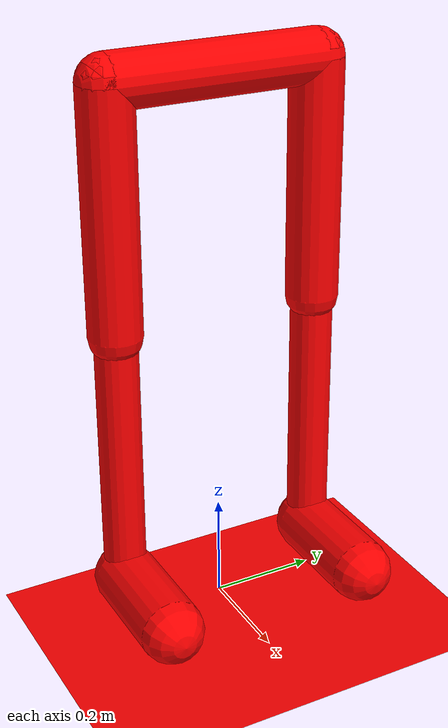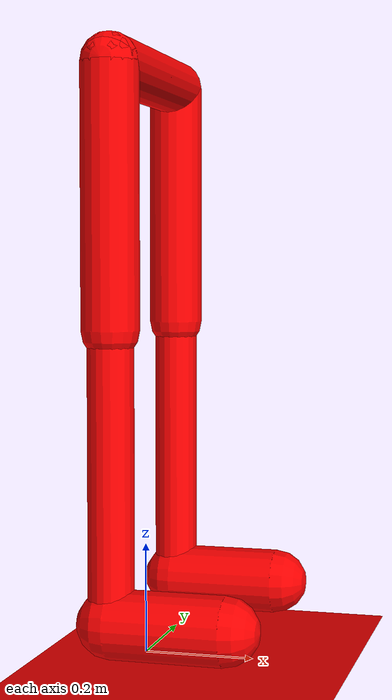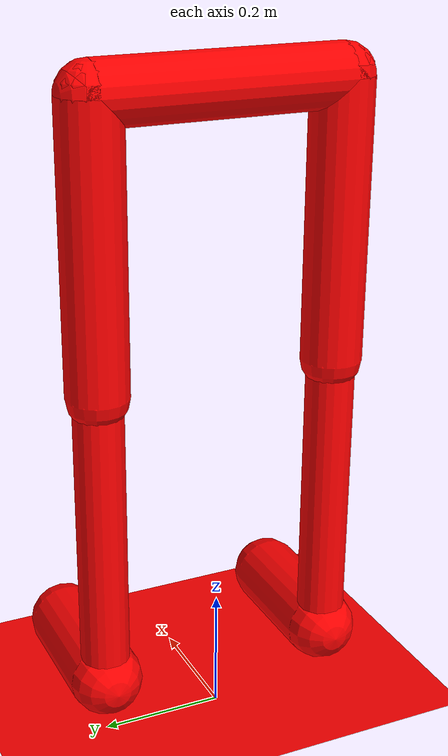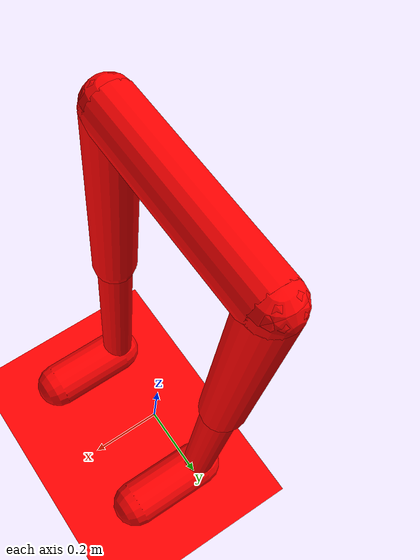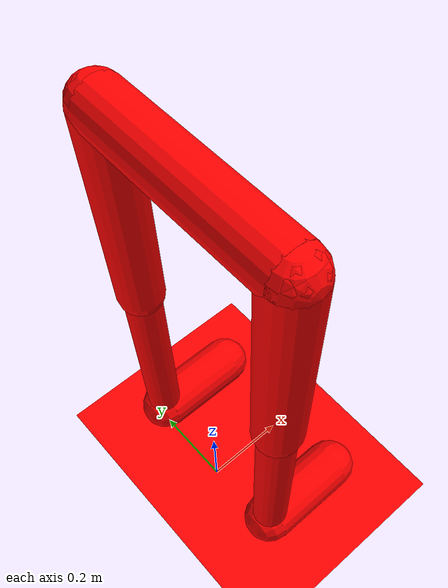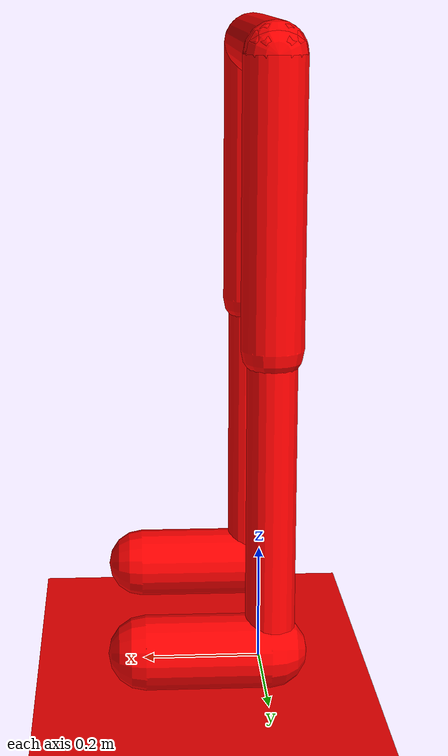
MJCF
<mujoco model="walker3d">
  <compiler angle="degree" coordinate="local" inertiafromgeom="true"/>
  <size njmax="3000" nconmax="1000"/>
  <default>
    <joint armature="1" damping="10" limited="true"/>
    <geom condim="6" density="500" friction=".7 .1 .1" rgba="1 0 0  1"/>
    <site size="0.05" type="sphere" rgba="0 0 1 1"/>
  </default>
  <option timestep="0.002"/>
  <worldbody>
    <geom name="floor" size="5 5 0.1" type="plane" condim="6"/>
    <body name="robot" pos="0 0 1.05">
      <site name="robot" rgba="1 0 0 .1"/>
      <camera name="vision" pos=".125 0 .2" xyaxes="0 -1 0 .4 0 1" fovy="100"/>
      <joint armature="0" axis="1 0 0" damping="0" limited="false" name="rootx" pos="0 0 0" stiffness="0" type="slide"/>
      <joint armature="0" axis="0 0 1" damping="0" limited="false" name="rootz" pos="0 0 0" stiffness="10" type="hinge"/>
      <joint armature="0" axis="0 1 0" damping="0" limited="false" name="rooty" pos="0 0 0" stiffness="0" type="slide"/>

      <geom friction="0.9" fromto="0 0.2 0 0 -0.2 0" name="robot_geom" size="0.05" type="capsule"/>
      <body name="thigh" pos="0 0.2 0">
        <joint axis="0 -1 0" name="thigh_joint" pos="0 0 0" range="-150 0" type="hinge"/>
        <geom friction="0.9" fromto="0 0 0 0 0 -0.45" name="thigh_geom" size="0.05" type="capsule"/>
        <body name="leg" pos="0 0 -0.7">
          <joint axis="0 -1 0" name="leg_joint" pos="0 0 0.25" range="-150 0" type="hinge"/>
          <geom friction="0.9" fromto="0 0 0.25 0 0 -0.25" name="leg_geom" size="0.04" type="capsule"/>
          <body name="foot" pos="0.2 0 -0.35">
            <joint axis="0 -1 0" name="foot_joint" pos="-0.2 0 0.1" range="-45 45" type="hinge"/>
            <geom friction="0.9" fromto="-0.2 0 0.1 0.0 0 0.1" name="foot_geom" size="0.06" type="capsule"/>
            <site name="foot" pos="0.0 0 0.1"/>
          </body>
        </body>
      </body>
      <!-- copied and then replace thigh->thigh_left, leg->leg_left, foot->foot_right -->
      <body name="thigh_left" pos="0 -0.2 0">
        <joint axis="0 -1 0" name="thigh_left_joint" pos="0 0 0" range="-150 0" type="hinge"/>
        <geom friction="0.9" fromto="0 0 0 0 0 -0.45" name="thigh_left_geom" size="0.05" type="capsule"/>
        <body name="leg_left" pos="0 0 -0.7">
          <joint axis="0 -1 0" name="leg_left_joint" pos="0 0 0.25" range="-150 0" type="hinge"/>
          <geom friction="0.9" fromto="0 0 0.25 0 0 -0.25" name="leg_left_geom" size="0.04" type="capsule"/>
          <body name="foot_left" pos="0.2 0 -0.35">
            <joint axis="0 -1 0" name="foot_left_joint" pos="-0.2 0 0.1" range="-45 45" type="hinge"/>
            <geom friction="1.9" fromto="-0.2 0 0.1 0.0 0 0.1" name="foot_left_geom" size="0.06" type="capsule"/>
            <site name="foot_left" pos="0.0 0 0.1"/>
          </body>
        </body>
      </body>
    </body>
  </worldbody>
  <sensor>
    <touch site="foot" name="touch_foot"/>
    <touch site="foot_left" name="touch_foot_left"/>

    <jointpos joint="thigh_joint" name="jointpos_thigh_joint"/>
    <jointpos joint="leg_joint" name="jointpos_leg_joint"/>
    <jointpos joint="foot_joint" name="jointpos_foot_joint"/>
    <jointpos joint="thigh_left_joint" name="jointpos_thigh_left_joint"/>
    <jointpos joint="leg_left_joint" name="jointpos_leg_left_joint"/>
    <jointpos joint="foot_left_joint" name="jointpos_foot_left_joint"/>

    <jointvel joint="thigh_joint" name="jointvel_thigh_joint"/>
    <jointvel joint="leg_joint" name="jointvel_leg_joint"/>
    <jointvel joint="foot_joint" name="jointvel_foot_joint"/>
    <jointvel joint="thigh_left_joint" name="jointvel_thigh_left_joint"/>
    <jointvel joint="leg_left_joint" name="jointvel_leg_left_joint"/>
    <jointvel joint="foot_left_joint" name="jointvel_foot_left_joint"/>

        <!-- Used for observation -->
        <accelerometer site="robot" name="accelerometer"/>
        <velocimeter site="robot" name="velocimeter"/>
        <gyro site="robot" name="gyro"/>
        <magnetometer site="robot" name="magnetometer"/>

        <!-- Used for intrinsic constraints -->
        <subtreecom body="robot" name="subtreecom"/>
        <subtreelinvel body="robot" name="subtreelinvel"/>
        <subtreeangmom body="robot" name="subtreeangmom"/>
  </sensor>
  <actuator>
    <motor ctrllimited="true" ctrlrange="-1.0 1.0" gear="30" joint="thigh_joint"/>
    <motor ctrllimited="true" ctrlrange="-1.0 1.0" gear="20" joint="leg_joint"/>
    <motor ctrllimited="true" ctrlrange="-1.0 1.0" gear="15" joint="foot_joint"/>
    <motor ctrllimited="true" ctrlrange="-1.0 1.0" gear="30" joint="thigh_left_joint"/>
    <motor ctrllimited="true" ctrlrange="-1.0 1.0" gear="20" joint="leg_left_joint"/>
    <motor ctrllimited="true" ctrlrange="-1.0 1.0" gear="15" joint="foot_left_joint"/>
  </actuator>
</mujoco>
